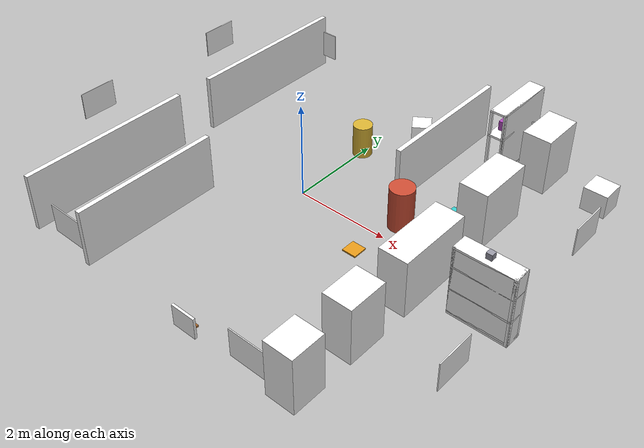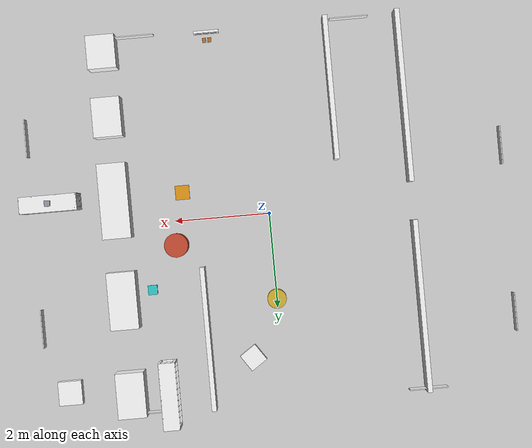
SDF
<sdf version="1.9">
 <world name="room">
  <model name="ground_plane">
   <static>true</static>
   <link name="link">
    <collision name="collision">
     <geometry><plane><normal>0 0 1</normal><size>100 100</size></plane></geometry>
     <surface><friction><ode><mu>1.0</mu><mu2>1.0</mu2></ode></friction></surface>
    </collision>
   </link>
  </model>
  <model name="partitions">
   <static>true</static>
   <link name="link">
    <visual name="part_0">
     <pose>-1.5 -2.5 0.6 0 0 0</pose>
     <geometry><box><size>0.1 3.0 1.2</size></box></geometry>
     <material>
      <ambient>1 1 1 1</ambient>
      <diffuse>1 1 1 1</diffuse>
      <specular>0.05 0.05 0.05 1</specular>
      <pbr>
       <metal>
        <albedo_map>model://room_materials/materials/textures/wall_18.png</albedo_map>
        <metalness>0.0</metalness>
        <roughness>0.9</roughness>
       </metal>
      </pbr>
     </material>
    </visual>
    <collision name="part_col_0">
     <pose>-1.5 -2.5 0.6 0 0 0</pose>
     <geometry><box><size>0.1 3.0 1.2</size></box></geometry>
    </collision>
    <visual name="part_1">
     <pose>1.5 2.5 0.6 0 0 0</pose>
     <geometry><box><size>0.1 3.0 1.2</size></box></geometry>
     <material>
      <ambient>1 1 1 1</ambient>
      <diffuse>1 1 1 1</diffuse>
      <specular>0.05 0.05 0.05 1</specular>
      <pbr>
       <metal>
        <albedo_map>model://room_materials/materials/textures/wall_19.png</albedo_map>
        <metalness>0.0</metalness>
        <roughness>0.9</roughness>
       </metal>
      </pbr>
     </material>
    </visual>
    <collision name="part_col_1">
     <pose>1.5 2.5 0.6 0 0 0</pose>
     <geometry><box><size>0.1 3.0 1.2</size></box></geometry>
    </collision>
   </link>
  </model>
  <model name="passages">
   <static>true</static>
   <link name="link">
    <visual name="main_0">
     <pose>-3.0 -2.2 0.6 0 0 0</pose>
     <geometry><box><size>0.1 3.6 1.2</size></box></geometry>
     <material>
      <ambient>1 1 1 1</ambient>
      <diffuse>1 1 1 1</diffuse>
      <specular>0.05 0.05 0.05 1</specular>
      <pbr>
       <metal>
        <albedo_map>model://room_materials/materials/textures/wall_26.png</albedo_map>
        <metalness>0.0</metalness>
        <roughness>0.9</roughness>
       </metal>
      </pbr>
     </material>
    </visual>
    <collision name="main_col_0">
     <pose>-3.0 -2.2 0.6 0 0 0</pose>
     <geometry><box><size>0.1 3.6 1.2</size></box></geometry>
    </collision>
    <visual name="main_1">
     <pose>-3.0 2.2 0.6 0 0 0</pose>
     <geometry><box><size>0.1 3.6 1.2</size></box></geometry>
     <material>
      <ambient>1 1 1 1</ambient>
      <diffuse>1 1 1 1</diffuse>
      <specular>0.05 0.05 0.05 1</specular>
      <pbr>
       <metal>
        <albedo_map>model://room_materials/materials/textures/wall_27.png</albedo_map>
        <metalness>0.0</metalness>
        <roughness>0.9</roughness>
       </metal>
      </pbr>
     </material>
    </visual>
    <collision name="main_col_1">
     <pose>-3.0 2.2 0.6 0 0 0</pose>
     <geometry><box><size>0.1 3.6 1.2</size></box></geometry>
    </collision>
    <visual name="corr_0">
     <pose>3.2 -3.65 0.6 0 0 0</pose>
     <geometry><box><size>0.6 0.7000000000000002 1.2</size></box></geometry>
     <material>
      <ambient>1 1 1 1</ambient>
      <diffuse>1 1 1 1</diffuse>
      <specular>0.05 0.05 0.05 1</specular>
      <pbr>
       <metal>
        <albedo_map>model://room_materials/materials/textures/wall_21.png</albedo_map>
        <metalness>0.0</metalness>
        <roughness>0.9</roughness>
       </metal>
      </pbr>
     </material>
    </visual>
    <collision name="corr_col_0">
     <pose>3.2 -3.65 0.6 0 0 0</pose>
     <geometry><box><size>0.6 0.7000000000000002 1.2</size></box></geometry>
    </collision>
    <visual name="corr_1">
     <pose>3.2 -2.2875 0.6 0 0 0</pose>
     <geometry><box><size>0.6 0.8250000000000002 1.2</size></box></geometry>
     <material>
      <ambient>1 1 1 1</ambient>
      <diffuse>1 1 1 1</diffuse>
      <specular>0.05 0.05 0.05 1</specular>
      <pbr>
       <metal>
        <albedo_map>model://room_materials/materials/textures/wall_22.png</albedo_map>
        <metalness>0.0</metalness>
        <roughness>0.9</roughness>
       </metal>
      </pbr>
     </material>
    </visual>
    <collision name="corr_col_1">
     <pose>3.2 -2.2875 0.6 0 0 0</pose>
     <geometry><box><size>0.6 0.8250000000000002 1.2</size></box></geometry>
    </collision>
    <visual name="corr_2">
     <pose>3.2 -0.5375000000000001 0.6 0 0 0</pose>
     <geometry><box><size>0.6 1.5750000000000002 1.2</size></box></geometry>
     <material>
      <ambient>1 1 1 1</ambient>
      <diffuse>1 1 1 1</diffuse>
      <specular>0.05 0.05 0.05 1</specular>
      <pbr>
       <metal>
        <albedo_map>model://room_materials/materials/textures/wall_23.png</albedo_map>
        <metalness>0.0</metalness>
        <roughness>0.9</roughness>
       </metal>
      </pbr>
     </material>
    </visual>
    <collision name="corr_col_2">
     <pose>3.2 -0.5375000000000001 0.6 0 0 0</pose>
     <geometry><box><size>0.6 1.5750000000000002 1.2</size></box></geometry>
    </collision>
    <visual name="corr_3">
     <pose>3.2 1.5499999999999998 0.6 0 0 0</pose>
     <geometry><box><size>0.6 1.2 1.2</size></box></geometry>
     <material>
      <ambient>1 1 1 1</ambient>
      <diffuse>1 1 1 1</diffuse>
      <specular>0.05 0.05 0.05 1</specular>
      <pbr>
       <metal>
        <albedo_map>model://room_materials/materials/textures/wall_24.png</albedo_map>
        <metalness>0.0</metalness>
        <roughness>0.9</roughness>
       </metal>
      </pbr>
     </material>
    </visual>
    <collision name="corr_col_3">
     <pose>3.2 1.5499999999999998 0.6 0 0 0</pose>
     <geometry><box><size>0.6 1.2 1.2</size></box></geometry>
    </collision>
    <visual name="corr_4">
     <pose>3.2 3.5250000000000004 0.6 0 0 0</pose>
     <geometry><box><size>0.6 0.9499999999999997 1.2</size></box></geometry>
     <material>
      <ambient>1 1 1 1</ambient>
      <diffuse>1 1 1 1</diffuse>
      <specular>0.05 0.05 0.05 1</specular>
      <pbr>
       <metal>
        <albedo_map>model://room_materials/materials/textures/wall_25.png</albedo_map>
        <metalness>0.0</metalness>
        <roughness>0.9</roughness>
       </metal>
      </pbr>
     </material>
    </visual>
    <collision name="corr_col_4">
     <pose>3.2 3.5250000000000004 0.6 0 0 0</pose>
     <geometry><box><size>0.6 0.9499999999999997 1.2</size></box></geometry>
    </collision>
   </link>
  </model>
  <model name="posters">
   <static>true</static>
   <link name="link">
    <visual name="poster_0">
     <pose>4.94 -2.0 0.55 0 0 0</pose>
     <geometry><box><size>0.02 0.8 0.6</size></box></geometry>
     <material>
      <ambient>1 1 1 1</ambient>
      <diffuse>1 1 1 1</diffuse>
      <specular>0.05 0.05 0.05 1</specular>
      <pbr>
       <metal>
        <albedo_map>model://room_materials/materials/textures/poster1.png</albedo_map>
        <metalness>0.0</metalness>
        <roughness>0.9</roughness>
       </metal>
      </pbr>
     </material>
    </visual>
    <visual name="poster_1">
     <pose>4.94 2.0 0.55 0 0 0</pose>
     <geometry><box><size>0.02 0.8 0.6</size></box></geometry>
     <material>
      <ambient>1 1 1 1</ambient>
      <diffuse>1 1 1 1</diffuse>
      <specular>0.05 0.05 0.05 1</specular>
      <pbr>
       <metal>
        <albedo_map>model://room_materials/materials/textures/poster2.png</albedo_map>
        <metalness>0.0</metalness>
        <roughness>0.9</roughness>
       </metal>
      </pbr>
     </material>
    </visual>
    <visual name="poster_2">
     <pose>-4.94 -1.0 0.55 0 0 0</pose>
     <geometry><box><size>0.02 0.8 0.6</size></box></geometry>
     <material>
      <ambient>1 1 1 1</ambient>
      <diffuse>1 1 1 1</diffuse>
      <specular>0.05 0.05 0.05 1</specular>
      <pbr>
       <metal>
        <albedo_map>model://room_materials/materials/textures/poster3.png</albedo_map>
        <metalness>0.0</metalness>
        <roughness>0.9</roughness>
       </metal>
      </pbr>
     </material>
    </visual>
    <visual name="poster_3">
     <pose>-4.94 2.5 0.55 0 0 0</pose>
     <geometry><box><size>0.02 0.8 0.6</size></box></geometry>
     <material>
      <ambient>1 1 1 1</ambient>
      <diffuse>1 1 1 1</diffuse>
      <specular>0.05 0.05 0.05 1</specular>
      <pbr>
       <metal>
        <albedo_map>model://room_materials/materials/textures/poster4.png</albedo_map>
        <metalness>0.0</metalness>
        <roughness>0.9</roughness>
       </metal>
      </pbr>
     </material>
    </visual>
    <visual name="poster_4">
     <pose>-3.0 3.94 0.55 0 0 1.5708</pose>
     <geometry><box><size>0.02 0.8 0.6</size></box></geometry>
     <material>
      <ambient>1 1 1 1</ambient>
      <diffuse>1 1 1 1</diffuse>
      <specular>0.05 0.05 0.05 1</specular>
      <pbr>
       <metal>
        <albedo_map>model://room_materials/materials/textures/poster5.png</albedo_map>
        <metalness>0.0</metalness>
        <roughness>0.9</roughness>
       </metal>
      </pbr>
     </material>
    </visual>
    <visual name="poster_5">
     <pose>3.0 3.94 0.55 0 0 1.5708</pose>
     <geometry><box><size>0.02 0.8 0.6</size></box></geometry>
     <material>
      <ambient>1 1 1 1</ambient>
      <diffuse>1 1 1 1</diffuse>
      <specular>0.05 0.05 0.05 1</specular>
      <pbr>
       <metal>
        <albedo_map>model://room_materials/materials/textures/poster6.png</albedo_map>
        <metalness>0.0</metalness>
        <roughness>0.9</roughness>
       </metal>
      </pbr>
     </material>
    </visual>
    <visual name="poster_6">
     <pose>-2.0 -3.94 0.55 0 0 1.5708</pose>
     <geometry><box><size>0.02 0.8 0.6</size></box></geometry>
     <material>
      <ambient>1 1 1 1</ambient>
      <diffuse>1 1 1 1</diffuse>
      <specular>0.05 0.05 0.05 1</specular>
      <pbr>
       <metal>
        <albedo_map>model://room_materials/materials/textures/poster7.png</albedo_map>
        <metalness>0.0</metalness>
        <roughness>0.9</roughness>
       </metal>
      </pbr>
     </material>
    </visual>
    <visual name="poster_7">
     <pose>2.5 -3.94 0.55 0 0 1.5708</pose>
     <geometry><box><size>0.02 0.8 0.6</size></box></geometry>
     <material>
      <ambient>1 1 1 1</ambient>
      <diffuse>1 1 1 1</diffuse>
      <specular>0.05 0.05 0.05 1</specular>
      <pbr>
       <metal>
        <albedo_map>model://room_materials/materials/textures/poster8.png</albedo_map>
        <metalness>0.0</metalness>
        <roughness>0.9</roughness>
       </metal>
      </pbr>
     </material>
    </visual>
   </link>
  </model>
  <model name="crate_0">
   <static>true</static>
   <pose>4.5 3.4 0.25 0 0 0.0</pose>
   <link name="link">
    <collision name="collision"><geometry><box><size>0.5 0.5 0.5</size></box></geometry></collision>
    <visual name="visual">
     <geometry><box><size>0.5 0.5 0.5</size></box></geometry>
     <material>
      <ambient>1 1 1 1</ambient>
      <diffuse>1 1 1 1</diffuse>
      <specular>0.05 0.05 0.05 1</specular>
      <pbr>
       <metal>
        <albedo_map>model://room_materials/materials/textures/crate.png</albedo_map>
        <metalness>0.0</metalness>
        <roughness>0.9</roughness>
       </metal>
      </pbr>
     </material>
    </visual>
   </link>
  </model>
  <model name="crate_2">
   <static>true</static>
   <pose>0.6 3.0 0.2 0 0 0.6</pose>
   <link name="link">
    <collision name="collision"><geometry><box><size>0.4 0.4 0.4</size></box></geometry></collision>
    <visual name="visual">
     <geometry><box><size>0.4 0.4 0.4</size></box></geometry>
     <material>
      <ambient>1 1 1 1</ambient>
      <diffuse>1 1 1 1</diffuse>
      <specular>0.05 0.05 0.05 1</specular>
      <pbr>
       <metal>
        <albedo_map>model://room_materials/materials/textures/crate.png</albedo_map>
        <metalness>0.0</metalness>
        <roughness>0.9</roughness>
       </metal>
      </pbr>
     </material>
    </visual>
   </link>
  </model>
  <model name="low_obstacle_0">
   <static>true</static>
   <pose>1.8 -0.6 0.015 0 0 0</pose>
   <link name="link">
    <collision name="collision"><geometry><box><size>0.3 0.3 0.03</size></box></geometry></collision>
    <visual name="visual">
     <geometry><box><size>0.3 0.3 0.03</size></box></geometry>
     <material><ambient>0.9 0.6 0.1 1</ambient><diffuse>0.9 0.6 0.1 1</diffuse></material>
    </visual>
   </link>
  </model>
  <model name="low_obstacle_2">
   <static>true</static>
   <pose>2.6 1.4 0.05 0 0 0</pose>
   <link name="link">
    <collision name="collision"><geometry><box><size>0.2 0.2 0.1</size></box></geometry></collision>
    <visual name="visual">
     <geometry><box><size>0.2 0.2 0.1</size></box></geometry>
     <material><ambient>0.2 0.8 0.8 1</ambient><diffuse>0.2 0.8 0.8 1</diffuse></material>
    </visual>
   </link>
  </model>
  <model name="shelf_1">
   <static>true</static>
   <pose>2.4 3.6 0 0 0 1.5708</pose>
   <link name="link">
    <visual name="shelf_1_leg_0">
     <pose>0.6749999999999999 0.15 0.735 0 0 0</pose>
     <geometry><box><size>0.05 0.05 1.47</size></box></geometry>
     <material>
      <ambient>1 1 1 1</ambient>
      <diffuse>1 1 1 1</diffuse>
      <specular>0.05 0.05 0.05 1</specular>
      <pbr>
       <metal>
        <albedo_map>model://room_materials/materials/textures/crate.png</albedo_map>
        <metalness>0.0</metalness>
        <roughness>0.9</roughness>
       </metal>
      </pbr>
     </material>
    </visual>
    <collision name="shelf_1_legc_0">
     <pose>0.6749999999999999 0.15 0.735 0 0 0</pose>
     <geometry><box><size>0.05 0.05 1.47</size></box></geometry>
    </collision>
    <visual name="shelf_1_leg_1">
     <pose>0.6749999999999999 -0.15 0.735 0 0 0</pose>
     <geometry><box><size>0.05 0.05 1.47</size></box></geometry>
     <material>
      <ambient>1 1 1 1</ambient>
      <diffuse>1 1 1 1</diffuse>
      <specular>0.05 0.05 0.05 1</specular>
      <pbr>
       <metal>
        <albedo_map>model://room_materials/materials/textures/crate.png</albedo_map>
        <metalness>0.0</metalness>
        <roughness>0.9</roughness>
       </metal>
      </pbr>
     </material>
    </visual>
    <collision name="shelf_1_legc_1">
     <pose>0.6749999999999999 -0.15 0.735 0 0 0</pose>
     <geometry><box><size>0.05 0.05 1.47</size></box></geometry>
    </collision>
    <visual name="shelf_1_leg_2">
     <pose>-0.6749999999999999 0.15 0.735 0 0 0</pose>
     <geometry><box><size>0.05 0.05 1.47</size></box></geometry>
     <material>
      <ambient>1 1 1 1</ambient>
      <diffuse>1 1 1 1</diffuse>
      <specular>0.05 0.05 0.05 1</specular>
      <pbr>
       <metal>
        <albedo_map>model://room_materials/materials/textures/crate.png</albedo_map>
        <metalness>0.0</metalness>
        <roughness>0.9</roughness>
       </metal>
      </pbr>
     </material>
    </visual>
    <collision name="shelf_1_legc_2">
     <pose>-0.6749999999999999 0.15 0.735 0 0 0</pose>
     <geometry><box><size>0.05 0.05 1.47</size></box></geometry>
    </collision>
    <visual name="shelf_1_leg_3">
     <pose>-0.6749999999999999 -0.15 0.735 0 0 0</pose>
     <geometry><box><size>0.05 0.05 1.47</size></box></geometry>
     <material>
      <ambient>1 1 1 1</ambient>
      <diffuse>1 1 1 1</diffuse>
      <specular>0.05 0.05 0.05 1</specular>
      <pbr>
       <metal>
        <albedo_map>model://room_materials/materials/textures/crate.png</albedo_map>
        <metalness>0.0</metalness>
        <roughness>0.9</roughness>
       </metal>
      </pbr>
     </material>
    </visual>
    <collision name="shelf_1_legc_3">
     <pose>-0.6749999999999999 -0.15 0.735 0 0 0</pose>
     <geometry><box><size>0.05 0.05 1.47</size></box></geometry>
    </collision>
    <visual name="shelf_1_board_0">
     <pose>0 0 0.06 0 0 0</pose>
     <geometry><box><size>1.4 0.35 0.04</size></box></geometry>
     <material>
      <ambient>1 1 1 1</ambient>
      <diffuse>1 1 1 1</diffuse>
      <specular>0.05 0.05 0.05 1</specular>
      <pbr>
       <metal>
        <albedo_map>model://room_materials/materials/textures/crate.png</albedo_map>
        <metalness>0.0</metalness>
        <roughness>0.9</roughness>
       </metal>
      </pbr>
     </material>
    </visual>
    <collision name="shelf_1_boardc_0">
     <pose>0 0 0.06 0 0 0</pose>
     <geometry><box><size>1.4 0.35 0.04</size></box></geometry>
    </collision>
    <visual name="shelf_1_board_1">
     <pose>0 0 0.9 0 0 0</pose>
     <geometry><box><size>1.4 0.35 0.04</size></box></geometry>
     <material>
      <ambient>1 1 1 1</ambient>
      <diffuse>1 1 1 1</diffuse>
      <specular>0.05 0.05 0.05 1</specular>
      <pbr>
       <metal>
        <albedo_map>model://room_materials/materials/textures/crate.png</albedo_map>
        <metalness>0.0</metalness>
        <roughness>0.9</roughness>
       </metal>
      </pbr>
     </material>
    </visual>
    <collision name="shelf_1_boardc_1">
     <pose>0 0 0.9 0 0 0</pose>
     <geometry><box><size>1.4 0.35 0.04</size></box></geometry>
    </collision>
    <visual name="shelf_1_board_2">
     <pose>0 0 1.45 0 0 0</pose>
     <geometry><box><size>1.4 0.35 0.04</size></box></geometry>
     <material>
      <ambient>1 1 1 1</ambient>
      <diffuse>1 1 1 1</diffuse>
      <specular>0.05 0.05 0.05 1</specular>
      <pbr>
       <metal>
        <albedo_map>model://room_materials/materials/textures/crate.png</albedo_map>
        <metalness>0.0</metalness>
        <roughness>0.9</roughness>
       </metal>
      </pbr>
     </material>
    </visual>
    <collision name="shelf_1_boardc_2">
     <pose>0 0 1.45 0 0 0</pose>
     <geometry><box><size>1.4 0.35 0.04</size></box></geometry>
    </collision>
    <visual name="shelf_1_back">
     <pose>0 -0.16499999999999998 0.735 0 0 0</pose>
     <geometry><box><size>1.4 0.02 1.47</size></box></geometry>
     <material>
      <ambient>1 1 1 1</ambient>
      <diffuse>1 1 1 1</diffuse>
      <specular>0.05 0.05 0.05 1</specular>
      <pbr>
       <metal>
        <albedo_map>model://room_materials/materials/textures/crate.png</albedo_map>
        <metalness>0.0</metalness>
        <roughness>0.9</roughness>
       </metal>
      </pbr>
     </material>
    </visual>
    <collision name="shelf_1_backc">
     <pose>0 -0.16499999999999998 0.735 0 0 0</pose>
     <geometry><box><size>1.4 0.02 1.47</size></box></geometry>
    </collision>
    <collision name="shelf_1_item_c0">
     <pose>0.4 0 0.155 0 0 0</pose>
     <geometry><box><size>0.15 0.15 0.15</size></box></geometry>
    </collision>
    <visual name="shelf_1_item_0">
     <pose>0.4 0 0.155 0 0 0</pose>
     <geometry><box><size>0.15 0.15 0.15</size></box></geometry>
     <material><ambient>0.25 0.7 0.35 1</ambient><diffuse>0.25 0.7 0.35 1</diffuse></material>
    </visual>
    <collision name="shelf_1_item_c1">
     <pose>-0.35 0 1.02 0 0 0</pose>
     <geometry><box><size>0.2 0.2 0.2</size></box></geometry>
    </collision>
    <visual name="shelf_1_item_1">
     <pose>-0.35 0 1.02 0 0 0</pose>
     <geometry><box><size>0.2 0.2 0.2</size></box></geometry>
     <material><ambient>0.7 0.3 0.75 1</ambient><diffuse>0.7 0.3 0.75 1</diffuse></material>
    </visual>
   </link>
  </model>
  <model name="shelf_2">
   <static>true</static>
   <pose>4.55 -0.6 0 0 0 0.0</pose>
   <link name="link">
    <visual name="shelf_2_leg_0">
     <pose>0.57 0.145 0.735 0 0 0</pose>
     <geometry><box><size>0.06 0.06 1.47</size></box></geometry>
     <material>
      <ambient>1 1 1 1</ambient>
      <diffuse>1 1 1 1</diffuse>
      <specular>0.05 0.05 0.05 1</specular>
      <pbr>
       <metal>
        <albedo_map>model://room_materials/materials/textures/crate.png</albedo_map>
        <metalness>0.0</metalness>
        <roughness>0.9</roughness>
       </metal>
      </pbr>
     </material>
    </visual>
    <collision name="shelf_2_legc_0">
     <pose>0.57 0.145 0.735 0 0 0</pose>
     <geometry><box><size>0.06 0.06 1.47</size></box></geometry>
    </collision>
    <visual name="shelf_2_leg_1">
     <pose>0.57 -0.145 0.735 0 0 0</pose>
     <geometry><box><size>0.06 0.06 1.47</size></box></geometry>
     <material>
      <ambient>1 1 1 1</ambient>
      <diffuse>1 1 1 1</diffuse>
      <specular>0.05 0.05 0.05 1</specular>
      <pbr>
       <metal>
        <albedo_map>model://room_materials/materials/textures/crate.png</albedo_map>
        <metalness>0.0</metalness>
        <roughness>0.9</roughness>
       </metal>
      </pbr>
     </material>
    </visual>
    <collision name="shelf_2_legc_1">
     <pose>0.57 -0.145 0.735 0 0 0</pose>
     <geometry><box><size>0.06 0.06 1.47</size></box></geometry>
    </collision>
    <visual name="shelf_2_leg_2">
     <pose>-0.57 0.145 0.735 0 0 0</pose>
     <geometry><box><size>0.06 0.06 1.47</size></box></geometry>
     <material>
      <ambient>1 1 1 1</ambient>
      <diffuse>1 1 1 1</diffuse>
      <specular>0.05 0.05 0.05 1</specular>
      <pbr>
       <metal>
        <albedo_map>model://room_materials/materials/textures/crate.png</albedo_map>
        <metalness>0.0</metalness>
        <roughness>0.9</roughness>
       </metal>
      </pbr>
     </material>
    </visual>
    <collision name="shelf_2_legc_2">
     <pose>-0.57 0.145 0.735 0 0 0</pose>
     <geometry><box><size>0.06 0.06 1.47</size></box></geometry>
    </collision>
    <visual name="shelf_2_leg_3">
     <pose>-0.57 -0.145 0.735 0 0 0</pose>
     <geometry><box><size>0.06 0.06 1.47</size></box></geometry>
     <material>
      <ambient>1 1 1 1</ambient>
      <diffuse>1 1 1 1</diffuse>
      <specular>0.05 0.05 0.05 1</specular>
      <pbr>
       <metal>
        <albedo_map>model://room_materials/materials/textures/crate.png</albedo_map>
        <metalness>0.0</metalness>
        <roughness>0.9</roughness>
       </metal>
      </pbr>
     </material>
    </visual>
    <collision name="shelf_2_legc_3">
     <pose>-0.57 -0.145 0.735 0 0 0</pose>
     <geometry><box><size>0.06 0.06 1.47</size></box></geometry>
    </collision>
    <visual name="shelf_2_board_0">
     <pose>0 0 0.06 0 0 0</pose>
     <geometry><box><size>1.2 0.35 0.04</size></box></geometry>
     <material>
      <ambient>1 1 1 1</ambient>
      <diffuse>1 1 1 1</diffuse>
      <specular>0.05 0.05 0.05 1</specular>
      <pbr>
       <metal>
        <albedo_map>model://room_materials/materials/textures/crate.png</albedo_map>
        <metalness>0.0</metalness>
        <roughness>0.9</roughness>
       </metal>
      </pbr>
     </material>
    </visual>
    <collision name="shelf_2_boardc_0">
     <pose>0 0 0.06 0 0 0</pose>
     <geometry><box><size>1.2 0.35 0.04</size></box></geometry>
    </collision>
    <visual name="shelf_2_board_1">
     <pose>0 0 0.55 0 0 0</pose>
     <geometry><box><size>1.2 0.35 0.04</size></box></geometry>
     <material>
      <ambient>1 1 1 1</ambient>
      <diffuse>1 1 1 1</diffuse>
      <specular>0.05 0.05 0.05 1</specular>
      <pbr>
       <metal>
        <albedo_map>model://room_materials/materials/textures/crate.png</albedo_map>
        <metalness>0.0</metalness>
        <roughness>0.9</roughness>
       </metal>
      </pbr>
     </material>
    </visual>
    <collision name="shelf_2_boardc_1">
     <pose>0 0 0.55 0 0 0</pose>
     <geometry><box><size>1.2 0.35 0.04</size></box></geometry>
    </collision>
    <visual name="shelf_2_board_2">
     <pose>0 0 1.05 0 0 0</pose>
     <geometry><box><size>1.2 0.35 0.04</size></box></geometry>
     <material>
      <ambient>1 1 1 1</ambient>
      <diffuse>1 1 1 1</diffuse>
      <specular>0.05 0.05 0.05 1</specular>
      <pbr>
       <metal>
        <albedo_map>model://room_materials/materials/textures/crate.png</albedo_map>
        <metalness>0.0</metalness>
        <roughness>0.9</roughness>
       </metal>
      </pbr>
     </material>
    </visual>
    <collision name="shelf_2_boardc_2">
     <pose>0 0 1.05 0 0 0</pose>
     <geometry><box><size>1.2 0.35 0.04</size></box></geometry>
    </collision>
    <visual name="shelf_2_board_3">
     <pose>0 0 1.45 0 0 0</pose>
     <geometry><box><size>1.2 0.35 0.04</size></box></geometry>
     <material>
      <ambient>1 1 1 1</ambient>
      <diffuse>1 1 1 1</diffuse>
      <specular>0.05 0.05 0.05 1</specular>
      <pbr>
       <metal>
        <albedo_map>model://room_materials/materials/textures/crate.png</albedo_map>
        <metalness>0.0</metalness>
        <roughness>0.9</roughness>
       </metal>
      </pbr>
     </material>
    </visual>
    <collision name="shelf_2_boardc_3">
     <pose>0 0 1.45 0 0 0</pose>
     <geometry><box><size>1.2 0.35 0.04</size></box></geometry>
    </collision>
    <visual name="shelf_2_back">
     <pose>0 -0.16499999999999998 0.735 0 0 0</pose>
     <geometry><box><size>1.2 0.02 1.47</size></box></geometry>
     <material>
      <ambient>1 1 1 1</ambient>
      <diffuse>1 1 1 1</diffuse>
      <specular>0.05 0.05 0.05 1</specular>
      <pbr>
       <metal>
        <albedo_map>model://room_materials/materials/textures/crate.png</albedo_map>
        <metalness>0.0</metalness>
        <roughness>0.9</roughness>
       </metal>
      </pbr>
     </material>
    </visual>
    <collision name="shelf_2_backc">
     <pose>0 -0.16499999999999998 0.735 0 0 0</pose>
     <geometry><box><size>1.2 0.02 1.47</size></box></geometry>
    </collision>
    <visual name="shelf_2_side_0">
     <pose>0.59 0 0.735 0 0 0</pose>
     <geometry><box><size>0.02 0.35 1.47</size></box></geometry>
     <material>
      <ambient>1 1 1 1</ambient>
      <diffuse>1 1 1 1</diffuse>
      <specular>0.05 0.05 0.05 1</specular>
      <pbr>
       <metal>
        <albedo_map>model://room_materials/materials/textures/crate.png</albedo_map>
        <metalness>0.0</metalness>
        <roughness>0.9</roughness>
       </metal>
      </pbr>
     </material>
    </visual>
    <collision name="shelf_2_sidec_0">
     <pose>0.59 0 0.735 0 0 0</pose>
     <geometry><box><size>0.02 0.35 1.47</size></box></geometry>
    </collision>
    <visual name="shelf_2_side_1">
     <pose>-0.59 0 0.735 0 0 0</pose>
     <geometry><box><size>0.02 0.35 1.47</size></box></geometry>
     <material>
      <ambient>1 1 1 1</ambient>
      <diffuse>1 1 1 1</diffuse>
      <specular>0.05 0.05 0.05 1</specular>
      <pbr>
       <metal>
        <albedo_map>model://room_materials/materials/textures/crate.png</albedo_map>
        <metalness>0.0</metalness>
        <roughness>0.9</roughness>
       </metal>
      </pbr>
     </material>
    </visual>
    <collision name="shelf_2_sidec_1">
     <pose>-0.59 0 0.735 0 0 0</pose>
     <geometry><box><size>0.02 0.35 1.47</size></box></geometry>
    </collision>
    <collision name="shelf_2_item_c0">
     <pose>-0.3 0 0.6400000000000001 0 0 0</pose>
     <geometry><box><size>0.14 0.14 0.14</size></box></geometry>
    </collision>
    <visual name="shelf_2_item_0">
     <pose>-0.3 0 0.6400000000000001 0 0 0</pose>
     <geometry><box><size>0.14 0.14 0.14</size></box></geometry>
     <material><ambient>0.95 0.55 0.15 1</ambient><diffuse>0.95 0.55 0.15 1</diffuse></material>
    </visual>
    <collision name="shelf_2_item_c1">
     <pose>0.25 0 1.155 0 0 0</pose>
     <geometry><box><size>0.17 0.17 0.17</size></box></geometry>
    </collision>
    <visual name="shelf_2_item_1">
     <pose>0.25 0 1.155 0 0 0</pose>
     <geometry><box><size>0.17 0.17 0.17</size></box></geometry>
     <material><ambient>0.15 0.65 0.7 1</ambient><diffuse>0.15 0.65 0.7 1</diffuse></material>
    </visual>
    <collision name="shelf_2_item_c2">
     <pose>0.0 0 1.53 0 0 0</pose>
     <geometry><box><size>0.12 0.12 0.12</size></box></geometry>
    </collision>
    <visual name="shelf_2_item_2">
     <pose>0.0 0 1.53 0 0 0</pose>
     <geometry><box><size>0.12 0.12 0.12</size></box></geometry>
     <material><ambient>0.6 0.6 0.65 1</ambient><diffuse>0.6 0.6 0.65 1</diffuse></material>
    </visual>
   </link>
  </model>
  <model name="pillar_0">
   <static>true</static>
   <pose>2.0 0.5 0.45 0 0 0</pose>
   <link name="link">
    <collision name="collision">
     <geometry><cylinder><radius>0.25</radius><length>0.9</length></cylinder></geometry>
    </collision>
    <visual name="visual">
     <geometry><cylinder><radius>0.25</radius><length>0.9</length></cylinder></geometry>
     <material><ambient>0.8 0.3 0.2 1</ambient><diffuse>0.8 0.3 0.2 1</diffuse></material>
    </visual>
   </link>
  </model>
  <model name="pillar_2">
   <static>true</static>
   <pose>0.0 1.8 0.35 0 0 0</pose>
   <link name="link">
    <collision name="collision">
     <geometry><cylinder><radius>0.2</radius><length>0.7</length></cylinder></geometry>
    </collision>
    <visual name="visual">
     <geometry><cylinder><radius>0.2</radius><length>0.7</length></cylinder></geometry>
     <material><ambient>0.85 0.7 0.2 1</ambient><diffuse>0.85 0.7 0.2 1</diffuse></material>
    </visual>
   </link>
  </model>
  <model name="dock_station">
   <static>true</static>
   <link name="link">
    <visual name="dock_panel">
     <pose>1.0 -3.9250000000000003 0.225 0 0 0</pose>
     <geometry><box><size>0.52 0.05 0.45</size></box></geometry>
     <material>
      <ambient>1 1 1 1</ambient>
      <diffuse>1 1 1 1</diffuse>
      <specular>0.05 0.05 0.05 1</specular>
      <pbr>
       <metal>
        <albedo_map>model://room_materials/materials/textures/dock_body.png</albedo_map>
        <metalness>0.0</metalness>
        <roughness>0.9</roughness>
       </metal>
      </pbr>
     </material>
    </visual>
    <collision name="dock_panel_c">
     <pose>1.0 -3.9250000000000003 0.225 0 0 0</pose>
     <geometry><box><size>0.52 0.05 0.45</size></box></geometry>
    </collision>
    <visual name="dock_marker_1">
     <pose>0.84 -3.898 0.31 0 0 0</pose>
     <geometry><box><size>0.14 0.008 0.14</size></box></geometry>
     <material>
      <ambient>1 1 1 1</ambient>
      <diffuse>1 1 1 1</diffuse>
      <specular>0.05 0.05 0.05 1</specular>
      <pbr>
       <metal>
        <albedo_map>model://room_materials/materials/textures/dock_marker_1.png</albedo_map>
        <metalness>0.0</metalness>
        <roughness>0.9</roughness>
       </metal>
      </pbr>
     </material>
    </visual>
    <visual name="dock_marker_0">
     <pose>1.0 -3.898 0.31 0 0 0</pose>
     <geometry><box><size>0.14 0.008 0.14</size></box></geometry>
     <material>
      <ambient>1 1 1 1</ambient>
      <diffuse>1 1 1 1</diffuse>
      <specular>0.05 0.05 0.05 1</specular>
      <pbr>
       <metal>
        <albedo_map>model://room_materials/materials/textures/dock_marker_0.png</albedo_map>
        <metalness>0.0</metalness>
        <roughness>0.9</roughness>
       </metal>
      </pbr>
     </material>
    </visual>
    <visual name="dock_marker_2">
     <pose>1.16 -3.898 0.31 0 0 0</pose>
     <geometry><box><size>0.14 0.008 0.14</size></box></geometry>
     <material>
      <ambient>1 1 1 1</ambient>
      <diffuse>1 1 1 1</diffuse>
      <specular>0.05 0.05 0.05 1</specular>
      <pbr>
       <metal>
        <albedo_map>model://room_materials/materials/textures/dock_marker_2.png</albedo_map>
        <metalness>0.0</metalness>
        <roughness>0.9</roughness>
       </metal>
      </pbr>
     </material>
    </visual>
    <visual name="dock_plate_0">
     <pose>0.945 -3.77 0.02 0 0 0</pose>
     <geometry><box><size>0.075 0.1 0.04</size></box></geometry>
     <material>
      <ambient>0.72 0.45 0.2 1</ambient>
      <diffuse>0.72 0.45 0.2 1</diffuse>
      <specular>0.3 0.3 0.3 1</specular>
     </material>
    </visual>
    <collision name="dock_plate_0_c">
     <pose>0.945 -3.77 0.02 0 0 0</pose>
     <geometry><box><size>0.075 0.1 0.04</size></box></geometry>
    </collision>
    <visual name="dock_plate_1">
     <pose>1.055 -3.77 0.02 0 0 0</pose>
     <geometry><box><size>0.075 0.1 0.04</size></box></geometry>
     <material>
      <ambient>0.72 0.45 0.2 1</ambient>
      <diffuse>0.72 0.45 0.2 1</diffuse>
      <specular>0.3 0.3 0.3 1</specular>
     </material>
    </visual>
    <collision name="dock_plate_1_c">
     <pose>1.055 -3.77 0.02 0 0 0</pose>
     <geometry><box><size>0.075 0.1 0.04</size></box></geometry>
    </collision>
   </link>
  </model>
 </world>
</sdf>
